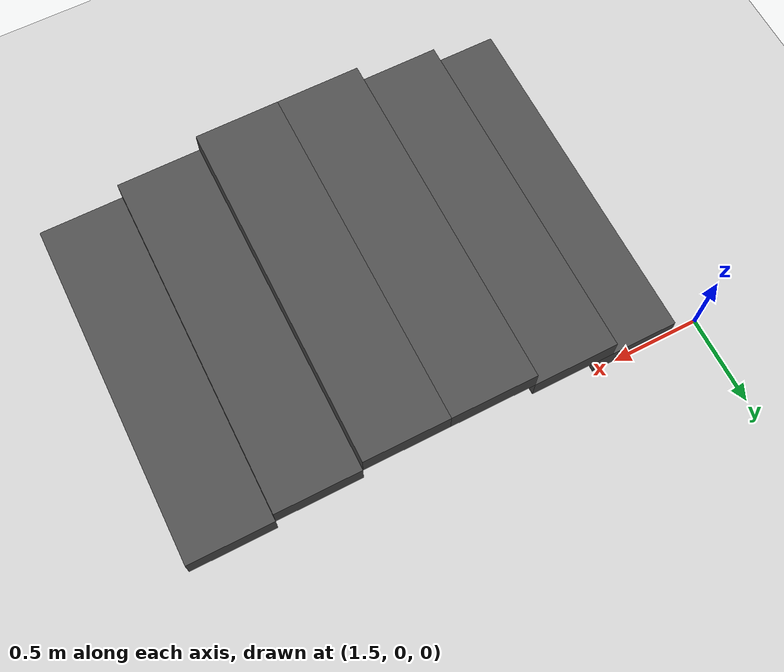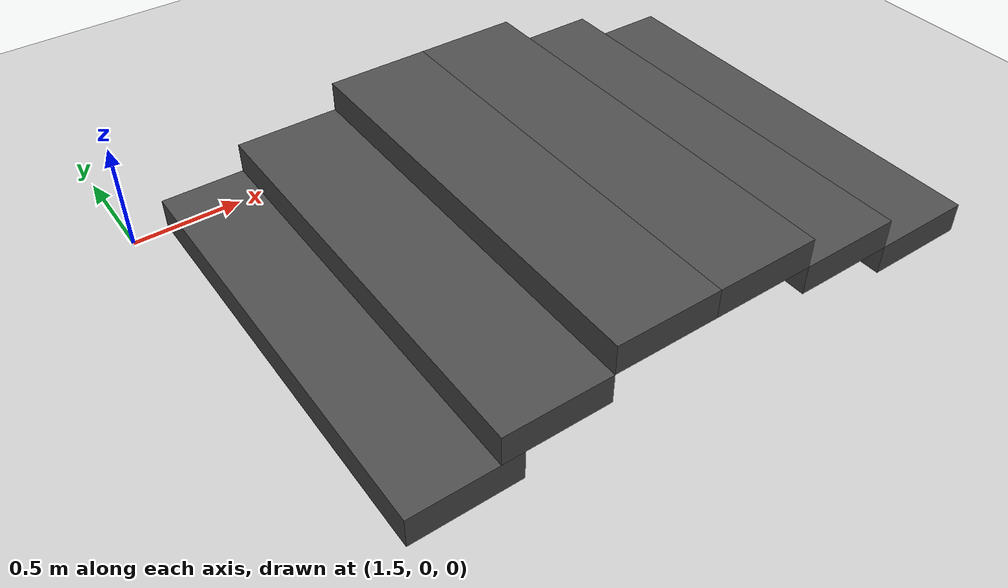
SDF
<sdf version="1.4">
 <world name="default">
  <physics type="ode">
   <gravity>0 0 -9.81</gravity>
   <max_step_size>0.001</max_step_size>
   <real_time_factor>1</real_time_factor>
  </physics>
  <include><uri>model://sun</uri></include>
  <include><uri>model://ground_plane</uri></include>
  <include><name>asphalt_plane</name><uri>model://asphalt_plane</uri><pose>0 0 -0.05 0 0 0</pose></include>
  <include>
   <name>asphalt_pallet</name>
   <uri>model://asphalt_pallet</uri>
   <pose>1.9 -1.0 0.09 0 0 0</pose>
  </include>
  <include>
   <name>asphalt_pallet</name>
   <uri>model://asphalt_pallet</uri>
   <pose>2.28 -1.0 0.23 0 0 0</pose>
  </include>
  <include>
   <name>asphalt_pallet</name>
   <uri>model://asphalt_pallet</uri>
   <pose>2.76 -1.0 0.37 0 0 0</pose>
  </include>
  <include>
   <name>asphalt_pallet</name>
   <uri>model://asphalt_pallet</uri>
   <pose>3.24 -1.0 0.37 0 0 0</pose>
  </include>
  <include>
   <name>asphalt_pallet</name>
   <uri>model://asphalt_pallet</uri>
   <pose>3.72 -1.0 0.23 0 0 0</pose>
  </include>
  <include>
   <name>asphalt_pallet</name>
   <uri>model://asphalt_pallet</uri>
   <pose>4.2 -1.0 0.09 0 0 0</pose>
  </include>
 </world>
</sdf>

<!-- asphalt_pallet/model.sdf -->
<sdf version="1.5">
  <model name="asphalt_pallet">
    <static>true</static>
    <link name="link">
      <collision name="collision">
        <geometry>
          <box>
            <size>0.48 2 .14</size>
          </box>
        </geometry>
      </collision>
      <visual name="visual">
        <cast_shadows>false</cast_shadows>
        <geometry>
          <box>
            <size>0.48 2 .14</size>
          </box>
        </geometry>
        <material>
          <script>
            <uri>model://asphalt_plane/materials/scripts</uri>
            <uri>model://asphalt_plane/materials/textures</uri>
            <name>vrc/asphalt</name>
          </script>
        </material>
      </visual>
    </link>
  </model>
</sdf>
